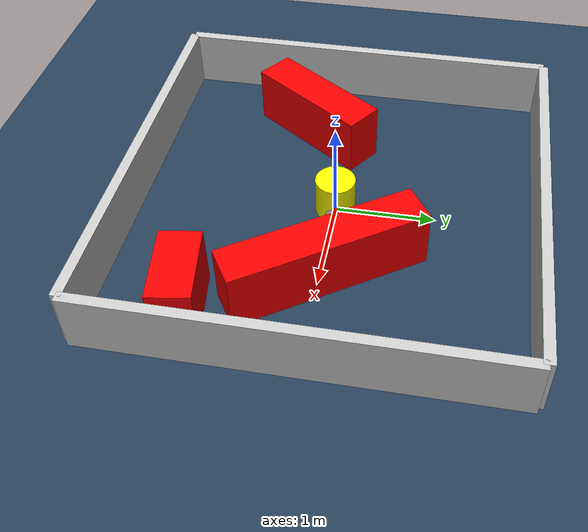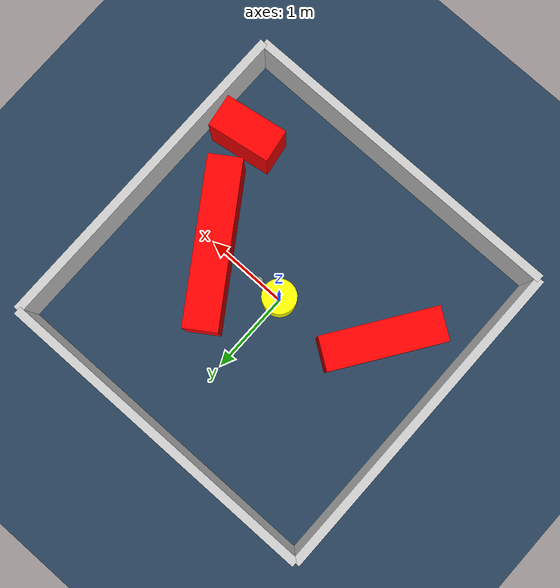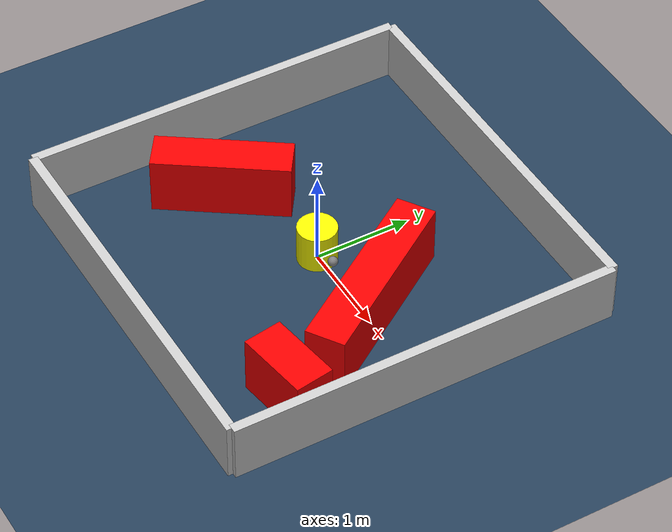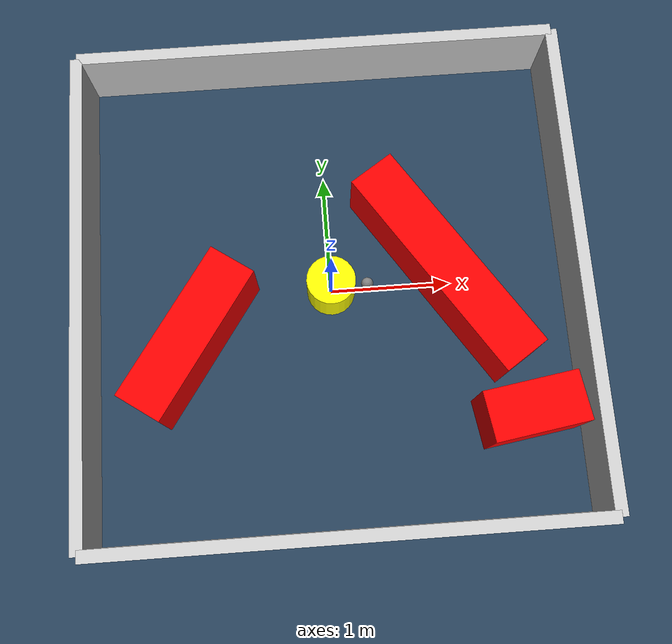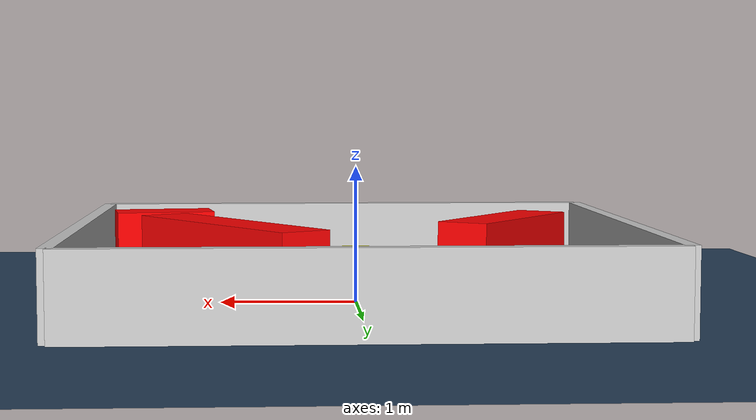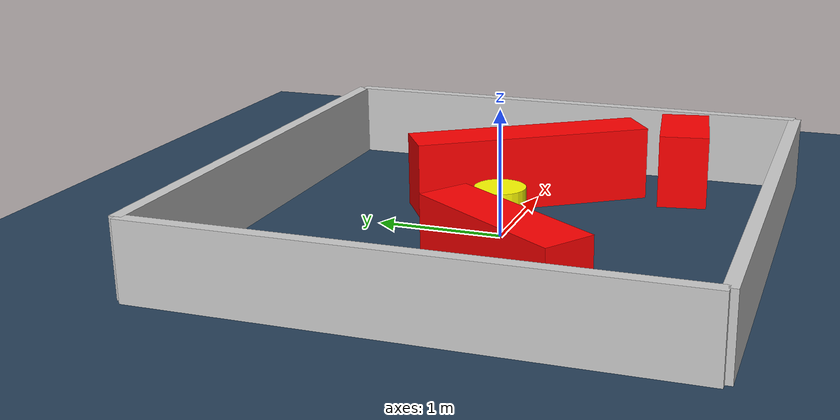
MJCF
<?xml version="1.0" ?>
<mujoco model="generated_environment">
  <option timestep="0.01" integrator="RK4" cone="elliptic"/>
  <default>
    <geom density="1"/>
  </default>
  <asset>
    <texture builtin="gradient" height="3072" rgb1="0.3 0.5 0.7" rgb2="0 0 0" type="skybox" width="512"/>
    <texture builtin="checker" height="300" mark="edge" markrgb="0.8 0.8 0.8" name="groundplane" rgb1="0.2 0.3 0.4" rgb2="0.1 0.2 0.3" type="2d" width="300"/>
    <material name="groundplane" reflectance="0.2" texrepeat="5 5" texture="groundplane" texuniform="true"/>
    <material name="robot" rgba="0.0 1.0 0.0 1"/>
  </asset>
  <worldbody>
    <light dir="0 0 -1" directional="true" pos="0 0 1.5"/>
    <geom condim="4" friction="1.0 0.005 0.001" material="groundplane" name="floor" size="0 0 0.05" type="plane"/>
    <body name="walls">
      <geom name="wall_1" condim="4" pos="-2.0 0.0 0.3" rgba="0.800000011920929 0.800000011920929 0.800000011920929 1.0" size="0.05 2.0 0.3" type="box"/>
      <geom name="wall_2" condim="4" pos="2.0 0.0 0.3" rgba="0.800000011920929 0.800000011920929 0.800000011920929 1.0" size="0.05 2.0 0.3" type="box"/>
      <geom name="wall_3" condim="4" pos="0.0 -2.0 0.3" rgba="0.800000011920929 0.800000011920929 0.800000011920929 1.0" size="2.0 0.05 0.3" type="box"/>
      <geom name="wall_4" condim="4" pos="0.0 2.0 0.3" rgba="0.800000011920929 0.800000011920929 0.800000011920929 1.0" size="2.0 0.05 0.3" type="box"/>
    </body>
    <body name="robot">
      <joint name="joint_x" type="slide" pos="0 0 0" axis="1 0 0"/>
      <joint name="joint_y" type="slide" pos="0 0 0" axis="0 1 0"/>
      <geom name="robot" type="sphere" pos="0.3 0.0 0.2" size="0.05" mass="5." friction="1.0 0.005 0.0001" condim="4" rgba="0.5 0.5 0.5 1.0"/>
      <site name="sensor_ball"/>
    </body>
    <body name="obstacle_movable_1">
      <geom name="obstacle_movable_1" condim="4" pos="0.0 0.0 0.2" euler="0 0 0.0" friction="1.0 0.005 0.001" rgba="1.0 1.0 0.0 1.0" size="0.2 0.2 0.0" type="cylinder" mass="0.1"/>
      <joint type="free"/>
    </body>
    <body name="obstacle_2_static">
      <geom name="obstacle_2_static" condim="4" pos="0.9223137271547883 0.05071690167911869 0.3" euler="0 0 303.6807831169574" friction="1.0 0.005 0.001" rgba="1 0 0 1" size="0.9715993946776016 0.2 0.3" type="box"/>
    </body>
    <body name="obstacle_3_static">
      <geom name="obstacle_3_static" condim="4" pos="-1.155509138028792 -0.390580648634931 0.3" euler="0 0 235.55996624228314" friction="1.0 0.005 0.001" rgba="1 0 0 1" size="0.6838064624834927 0.2 0.3" type="box"/>
    </body>
    <body name="obstacle_4_static">
      <geom name="obstacle_4_static" condim="4" pos="1.4876811759303181 -1.145483745273618 0.3" euler="0 0 189.0443299656428" friction="1.0 0.005 0.001" rgba="1 0 0 1" size="0.38176449124339074 0.2 0.3" type="box"/>
    </body>
  </worldbody>
  <actuator>
    <motor name="actuator_x" joint="joint_x" gear="1" ctrlrange="-1 1"/>
    <motor name="actuator_y" joint="joint_y" gear="1" ctrlrange="-1 1"/>
  </actuator>
</mujoco>
